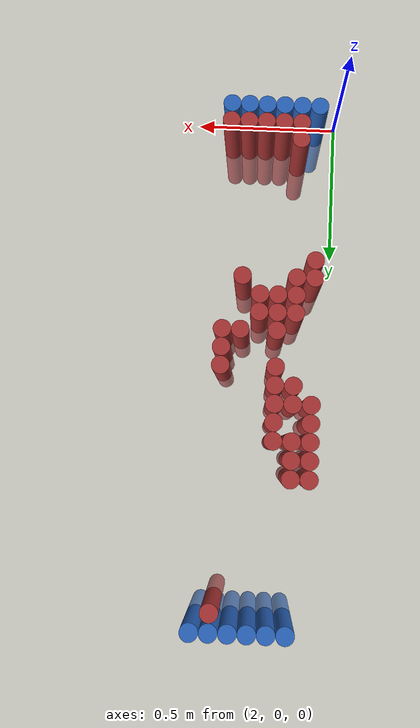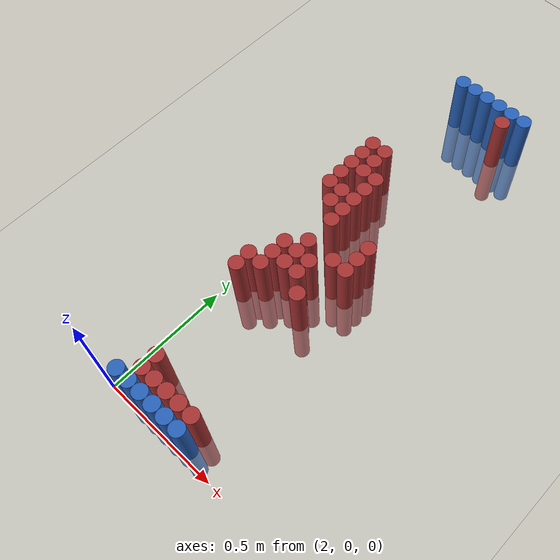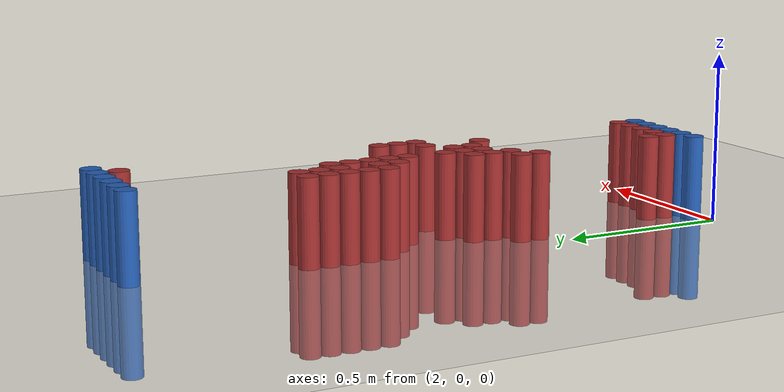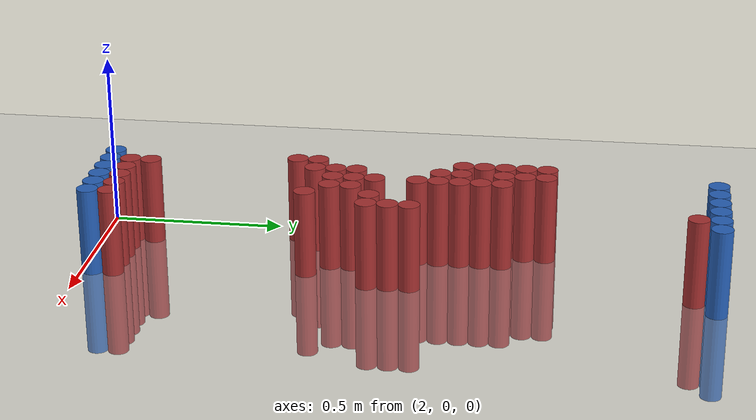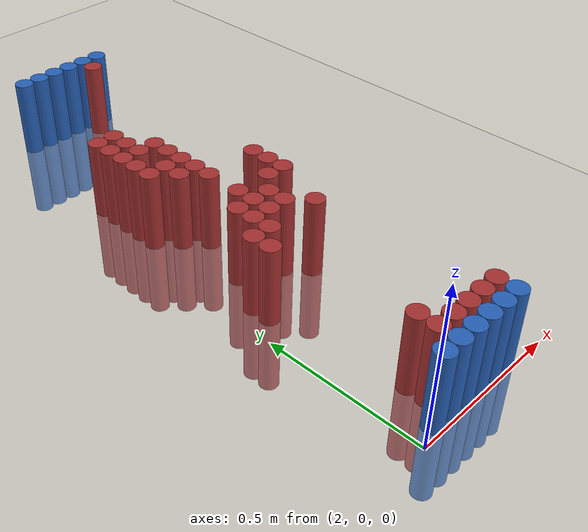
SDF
<sdf version="1.6">
 <world name="default">
  <model name="ground_plane">
   <static>1</static>
   <link name="link">
    <collision name="collision">
     <geometry><plane><normal>0 0 1</normal><size>100 100</size></plane></geometry>
     <surface><friction><ode><mu>100</mu><mu2>50</mu2></ode></friction></surface>
    </collision>
    <visual name="visual">
     <cast_shadows>0</cast_shadows>
     <geometry><plane><normal>0 0 1</normal><size>100 100</size></plane></geometry>
     <material>
      <script><uri>file://media/materials/scripts/gazebo.material</uri><name>Gazebo/Grey</name></script>
     </material>
    </visual>
   </link>
  </model>
  <model name="unit_cylinder_96">
   <static>1</static>
   <pose>2.130000 1.770000 0.000000 0.000000 0.000000 0.000000</pose>
   <link name="link">
    <inertial>
     <mass>1</mass>
     <inertia><ixx>0.145833</ixx><ixy>0</ixy><ixz>0</ixz><iyy>0.145833</iyy><iyz>0</iyz><izz>0.125</izz></inertia>
    </inertial>
    <collision name="collision">
     <geometry><cylinder><radius>0.030000</radius><length>0.5</length></cylinder></geometry>
    </collision>
    <visual name="visual">
     <geometry><cylinder><radius>0.030000</radius><length>0.5</length></cylinder></geometry>
     <material>
      <ambient>0.152000 0.379000 0.720000 1</ambient>
      <diffuse>0.152000 0.379000 0.720000 1</diffuse>
     </material>
     <material>
      <script><name>Gazebo/Grey</name><uri>file://media/materials/scripts/gazebo.material</uri></script>
     </material>
    </visual>
   </link>
  </model>
  <model name="unit_cylinder_97">
   <static>1</static>
   <pose>2.190000 1.770000 0.000000 0.000000 0.000000 0.000000</pose>
   <link name="link">
    <inertial>
     <mass>1</mass>
     <inertia><ixx>0.145833</ixx><ixy>0</ixy><ixz>0</ixz><iyy>0.145833</iyy><iyz>0</iyz><izz>0.125</izz></inertia>
    </inertial>
    <collision name="collision">
     <geometry><cylinder><radius>0.030000</radius><length>0.5</length></cylinder></geometry>
    </collision>
    <visual name="visual">
     <geometry><cylinder><radius>0.030000</radius><length>0.5</length></cylinder></geometry>
     <material>
      <ambient>0.152000 0.379000 0.720000 1</ambient>
      <diffuse>0.152000 0.379000 0.720000 1</diffuse>
     </material>
     <material>
      <script><name>Gazebo/Grey</name><uri>file://media/materials/scripts/gazebo.material</uri></script>
     </material>
    </visual>
   </link>
  </model>
  <model name="unit_cylinder_98">
   <static>1</static>
   <pose>2.250000 1.770000 0.000000 0.000000 0.000000 0.000000</pose>
   <link name="link">
    <inertial>
     <mass>1</mass>
     <inertia><ixx>0.145833</ixx><ixy>0</ixy><ixz>0</ixz><iyy>0.145833</iyy><iyz>0</iyz><izz>0.125</izz></inertia>
    </inertial>
    <collision name="collision">
     <geometry><cylinder><radius>0.030000</radius><length>0.5</length></cylinder></geometry>
    </collision>
    <visual name="visual">
     <geometry><cylinder><radius>0.030000</radius><length>0.5</length></cylinder></geometry>
     <material>
      <ambient>0.152000 0.379000 0.720000 1</ambient>
      <diffuse>0.152000 0.379000 0.720000 1</diffuse>
     </material>
     <material>
      <script><name>Gazebo/Grey</name><uri>file://media/materials/scripts/gazebo.material</uri></script>
     </material>
    </visual>
   </link>
  </model>
  <model name="unit_cylinder_99">
   <static>1</static>
   <pose>2.310000 1.770000 0.000000 0.000000 0.000000 0.000000</pose>
   <link name="link">
    <inertial>
     <mass>1</mass>
     <inertia><ixx>0.145833</ixx><ixy>0</ixy><ixz>0</ixz><iyy>0.145833</iyy><iyz>0</iyz><izz>0.125</izz></inertia>
    </inertial>
    <collision name="collision">
     <geometry><cylinder><radius>0.030000</radius><length>0.5</length></cylinder></geometry>
    </collision>
    <visual name="visual">
     <geometry><cylinder><radius>0.030000</radius><length>0.5</length></cylinder></geometry>
     <material>
      <ambient>0.152000 0.379000 0.720000 1</ambient>
      <diffuse>0.152000 0.379000 0.720000 1</diffuse>
     </material>
     <material>
      <script><name>Gazebo/Grey</name><uri>file://media/materials/scripts/gazebo.material</uri></script>
     </material>
    </visual>
   </link>
  </model>
  <model name="unit_cylinder_100">
   <static>1</static>
   <pose>2.370000 1.770000 0.000000 0.000000 0.000000 0.000000</pose>
   <link name="link">
    <inertial>
     <mass>1</mass>
     <inertia><ixx>0.145833</ixx><ixy>0</ixy><ixz>0</ixz><iyy>0.145833</iyy><iyz>0</iyz><izz>0.125</izz></inertia>
    </inertial>
    <collision name="collision">
     <geometry><cylinder><radius>0.030000</radius><length>0.5</length></cylinder></geometry>
    </collision>
    <visual name="visual">
     <geometry><cylinder><radius>0.030000</radius><length>0.5</length></cylinder></geometry>
     <material>
      <ambient>0.152000 0.379000 0.720000 1</ambient>
      <diffuse>0.152000 0.379000 0.720000 1</diffuse>
     </material>
     <material>
      <script><name>Gazebo/Grey</name><uri>file://media/materials/scripts/gazebo.material</uri></script>
     </material>
    </visual>
   </link>
  </model>
  <model name="unit_cylinder_101">
   <static>1</static>
   <pose>2.430000 1.770000 0.000000 0.000000 0.000000 0.000000</pose>
   <link name="link">
    <inertial>
     <mass>1</mass>
     <inertia><ixx>0.145833</ixx><ixy>0</ixy><ixz>0</ixz><iyy>0.145833</iyy><iyz>0</iyz><izz>0.125</izz></inertia>
    </inertial>
    <collision name="collision">
     <geometry><cylinder><radius>0.030000</radius><length>0.5</length></cylinder></geometry>
    </collision>
    <visual name="visual">
     <geometry><cylinder><radius>0.030000</radius><length>0.5</length></cylinder></geometry>
     <material>
      <ambient>0.152000 0.379000 0.720000 1</ambient>
      <diffuse>0.152000 0.379000 0.720000 1</diffuse>
     </material>
     <material>
      <script><name>Gazebo/Grey</name><uri>file://media/materials/scripts/gazebo.material</uri></script>
     </material>
    </visual>
   </link>
  </model>
  <model name="unit_cylinder_125">
   <static>1</static>
   <pose>2.370000 1.710000 0.000000 0.000000 0.000000 0.000000</pose>
   <link name="link">
    <inertial>
     <mass>1</mass>
     <inertia><ixx>0.145833</ixx><ixy>0</ixy><ixz>0</ixz><iyy>0.145833</iyy><iyz>0</iyz><izz>0.125</izz></inertia>
    </inertial>
    <collision name="collision">
     <geometry><cylinder><radius>0.030000</radius><length>0.5</length></cylinder></geometry>
    </collision>
    <visual name="visual">
     <geometry><cylinder><radius>0.030000</radius><length>0.5</length></cylinder></geometry>
     <material>
      <ambient>0.648000 0.192000 0.192000 1</ambient>
      <diffuse>0.648000 0.192000 0.192000 1</diffuse>
     </material>
     <material>
      <script><name>Gazebo/Grey</name><uri>file://media/materials/scripts/gazebo.material</uri></script>
     </material>
    </visual>
   </link>
  </model>
  <model name="unit_cylinder_163">
   <static>1</static>
   <pose>2.070000 1.290000 0.000000 0.000000 0.000000 0.000000</pose>
   <link name="link">
    <inertial>
     <mass>1</mass>
     <inertia><ixx>0.145833</ixx><ixy>0</ixy><ixz>0</ixz><iyy>0.145833</iyy><iyz>0</iyz><izz>0.125</izz></inertia>
    </inertial>
    <collision name="collision">
     <geometry><cylinder><radius>0.030000</radius><length>0.5</length></cylinder></geometry>
    </collision>
    <visual name="visual">
     <geometry><cylinder><radius>0.030000</radius><length>0.5</length></cylinder></geometry>
     <material>
      <ambient>0.648000 0.192000 0.192000 1</ambient>
      <diffuse>0.648000 0.192000 0.192000 1</diffuse>
     </material>
     <material>
      <script><name>Gazebo/Grey</name><uri>file://media/materials/scripts/gazebo.material</uri></script>
     </material>
    </visual>
   </link>
  </model>
  <model name="unit_cylinder_164">
   <static>1</static>
   <pose>2.130000 1.290000 0.000000 0.000000 0.000000 0.000000</pose>
   <link name="link">
    <inertial>
     <mass>1</mass>
     <inertia><ixx>0.145833</ixx><ixy>0</ixy><ixz>0</ixz><iyy>0.145833</iyy><iyz>0</iyz><izz>0.125</izz></inertia>
    </inertial>
    <collision name="collision">
     <geometry><cylinder><radius>0.030000</radius><length>0.5</length></cylinder></geometry>
    </collision>
    <visual name="visual">
     <geometry><cylinder><radius>0.030000</radius><length>0.5</length></cylinder></geometry>
     <material>
      <ambient>0.648000 0.192000 0.192000 1</ambient>
      <diffuse>0.648000 0.192000 0.192000 1</diffuse>
     </material>
     <material>
      <script><name>Gazebo/Grey</name><uri>file://media/materials/scripts/gazebo.material</uri></script>
     </material>
    </visual>
   </link>
  </model>
  <model name="unit_cylinder_166">
   <static>1</static>
   <pose>2.070000 1.230000 0.000000 0.000000 0.000000 0.000000</pose>
   <link name="link">
    <inertial>
     <mass>1</mass>
     <inertia><ixx>0.145833</ixx><ixy>0</ixy><ixz>0</ixz><iyy>0.145833</iyy><iyz>0</iyz><izz>0.125</izz></inertia>
    </inertial>
    <collision name="collision">
     <geometry><cylinder><radius>0.030000</radius><length>0.5</length></cylinder></geometry>
    </collision>
    <visual name="visual">
     <geometry><cylinder><radius>0.030000</radius><length>0.5</length></cylinder></geometry>
     <material>
      <ambient>0.648000 0.192000 0.192000 1</ambient>
      <diffuse>0.648000 0.192000 0.192000 1</diffuse>
     </material>
     <material>
      <script><name>Gazebo/Grey</name><uri>file://media/materials/scripts/gazebo.material</uri></script>
     </material>
    </visual>
   </link>
  </model>
  <model name="unit_cylinder_167">
   <static>1</static>
   <pose>2.130000 1.230000 0.000000 0.000000 0.000000 0.000000</pose>
   <link name="link">
    <inertial>
     <mass>1</mass>
     <inertia><ixx>0.145833</ixx><ixy>0</ixy><ixz>0</ixz><iyy>0.145833</iyy><iyz>0</iyz><izz>0.125</izz></inertia>
    </inertial>
    <collision name="collision">
     <geometry><cylinder><radius>0.030000</radius><length>0.5</length></cylinder></geometry>
    </collision>
    <visual name="visual">
     <geometry><cylinder><radius>0.030000</radius><length>0.5</length></cylinder></geometry>
     <material>
      <ambient>0.648000 0.192000 0.192000 1</ambient>
      <diffuse>0.648000 0.192000 0.192000 1</diffuse>
     </material>
     <material>
      <script><name>Gazebo/Grey</name><uri>file://media/materials/scripts/gazebo.material</uri></script>
     </material>
    </visual>
   </link>
  </model>
  <model name="unit_cylinder_168">
   <static>1</static>
   <pose>2.070000 1.170000 0.000000 0.000000 0.000000 0.000000</pose>
   <link name="link">
    <inertial>
     <mass>1</mass>
     <inertia><ixx>0.145833</ixx><ixy>0</ixy><ixz>0</ixz><iyy>0.145833</iyy><iyz>0</iyz><izz>0.125</izz></inertia>
    </inertial>
    <collision name="collision">
     <geometry><cylinder><radius>0.030000</radius><length>0.5</length></cylinder></geometry>
    </collision>
    <visual name="visual">
     <geometry><cylinder><radius>0.030000</radius><length>0.5</length></cylinder></geometry>
     <material>
      <ambient>0.648000 0.192000 0.192000 1</ambient>
      <diffuse>0.648000 0.192000 0.192000 1</diffuse>
     </material>
     <material>
      <script><name>Gazebo/Grey</name><uri>file://media/materials/scripts/gazebo.material</uri></script>
     </material>
    </visual>
   </link>
  </model>
  <model name="unit_cylinder_169">
   <static>1</static>
   <pose>2.130000 1.170000 0.000000 0.000000 0.000000 0.000000</pose>
   <link name="link">
    <inertial>
     <mass>1</mass>
     <inertia><ixx>0.145833</ixx><ixy>0</ixy><ixz>0</ixz><iyy>0.145833</iyy><iyz>0</iyz><izz>0.125</izz></inertia>
    </inertial>
    <collision name="collision">
     <geometry><cylinder><radius>0.030000</radius><length>0.5</length></cylinder></geometry>
    </collision>
    <visual name="visual">
     <geometry><cylinder><radius>0.030000</radius><length>0.5</length></cylinder></geometry>
     <material>
      <ambient>0.648000 0.192000 0.192000 1</ambient>
      <diffuse>0.648000 0.192000 0.192000 1</diffuse>
     </material>
     <material>
      <script><name>Gazebo/Grey</name><uri>file://media/materials/scripts/gazebo.material</uri></script>
     </material>
    </visual>
   </link>
  </model>
  <model name="unit_cylinder_170">
   <static>1</static>
   <pose>2.190000 1.170000 0.000000 0.000000 0.000000 0.000000</pose>
   <link name="link">
    <inertial>
     <mass>1</mass>
     <inertia><ixx>0.145833</ixx><ixy>0</ixy><ixz>0</ixz><iyy>0.145833</iyy><iyz>0</iyz><izz>0.125</izz></inertia>
    </inertial>
    <collision name="collision">
     <geometry><cylinder><radius>0.030000</radius><length>0.5</length></cylinder></geometry>
    </collision>
    <visual name="visual">
     <geometry><cylinder><radius>0.030000</radius><length>0.5</length></cylinder></geometry>
     <material>
      <ambient>0.648000 0.192000 0.192000 1</ambient>
      <diffuse>0.648000 0.192000 0.192000 1</diffuse>
     </material>
     <material>
      <script><name>Gazebo/Grey</name><uri>file://media/materials/scripts/gazebo.material</uri></script>
     </material>
    </visual>
   </link>
  </model>
  <model name="unit_cylinder_174">
   <static>1</static>
   <pose>2.070000 1.110000 0.000000 0.000000 0.000000 0.000000</pose>
   <link name="link">
    <inertial>
     <mass>1</mass>
     <inertia><ixx>0.145833</ixx><ixy>0</ixy><ixz>0</ixz><iyy>0.145833</iyy><iyz>0</iyz><izz>0.125</izz></inertia>
    </inertial>
    <collision name="collision">
     <geometry><cylinder><radius>0.030000</radius><length>0.5</length></cylinder></geometry>
    </collision>
    <visual name="visual">
     <geometry><cylinder><radius>0.030000</radius><length>0.5</length></cylinder></geometry>
     <material>
      <ambient>0.648000 0.192000 0.192000 1</ambient>
      <diffuse>0.648000 0.192000 0.192000 1</diffuse>
     </material>
     <material>
      <script><name>Gazebo/Grey</name><uri>file://media/materials/scripts/gazebo.material</uri></script>
     </material>
    </visual>
   </link>
  </model>
  <model name="unit_cylinder_175">
   <static>1</static>
   <pose>2.190000 1.110000 0.000000 0.000000 0.000000 0.000000</pose>
   <link name="link">
    <inertial>
     <mass>1</mass>
     <inertia><ixx>0.145833</ixx><ixy>0</ixy><ixz>0</ixz><iyy>0.145833</iyy><iyz>0</iyz><izz>0.125</izz></inertia>
    </inertial>
    <collision name="collision">
     <geometry><cylinder><radius>0.030000</radius><length>0.5</length></cylinder></geometry>
    </collision>
    <visual name="visual">
     <geometry><cylinder><radius>0.030000</radius><length>0.5</length></cylinder></geometry>
     <material>
      <ambient>0.648000 0.192000 0.192000 1</ambient>
      <diffuse>0.648000 0.192000 0.192000 1</diffuse>
     </material>
     <material>
      <script><name>Gazebo/Grey</name><uri>file://media/materials/scripts/gazebo.material</uri></script>
     </material>
    </visual>
   </link>
  </model>
  <model name="unit_cylinder_182">
   <static>1</static>
   <pose>2.070000 1.050000 0.000000 0.000000 0.000000 0.000000</pose>
   <link name="link">
    <inertial>
     <mass>1</mass>
     <inertia><ixx>0.145833</ixx><ixy>0</ixy><ixz>0</ixz><iyy>0.145833</iyy><iyz>0</iyz><izz>0.125</izz></inertia>
    </inertial>
    <collision name="collision">
     <geometry><cylinder><radius>0.030000</radius><length>0.5</length></cylinder></geometry>
    </collision>
    <visual name="visual">
     <geometry><cylinder><radius>0.030000</radius><length>0.5</length></cylinder></geometry>
     <material>
      <ambient>0.648000 0.192000 0.192000 1</ambient>
      <diffuse>0.648000 0.192000 0.192000 1</diffuse>
     </material>
     <material>
      <script><name>Gazebo/Grey</name><uri>file://media/materials/scripts/gazebo.material</uri></script>
     </material>
    </visual>
   </link>
  </model>
  <model name="unit_cylinder_183">
   <static>1</static>
   <pose>2.130000 1.050000 0.000000 0.000000 0.000000 0.000000</pose>
   <link name="link">
    <inertial>
     <mass>1</mass>
     <inertia><ixx>0.145833</ixx><ixy>0</ixy><ixz>0</ixz><iyy>0.145833</iyy><iyz>0</iyz><izz>0.125</izz></inertia>
    </inertial>
    <collision name="collision">
     <geometry><cylinder><radius>0.030000</radius><length>0.5</length></cylinder></geometry>
    </collision>
    <visual name="visual">
     <geometry><cylinder><radius>0.030000</radius><length>0.5</length></cylinder></geometry>
     <material>
      <ambient>0.648000 0.192000 0.192000 1</ambient>
      <diffuse>0.648000 0.192000 0.192000 1</diffuse>
     </material>
     <material>
      <script><name>Gazebo/Grey</name><uri>file://media/materials/scripts/gazebo.material</uri></script>
     </material>
    </visual>
   </link>
  </model>
  <model name="unit_cylinder_184">
   <static>1</static>
   <pose>2.190000 1.050000 0.000000 0.000000 0.000000 0.000000</pose>
   <link name="link">
    <inertial>
     <mass>1</mass>
     <inertia><ixx>0.145833</ixx><ixy>0</ixy><ixz>0</ixz><iyy>0.145833</iyy><iyz>0</iyz><izz>0.125</izz></inertia>
    </inertial>
    <collision name="collision">
     <geometry><cylinder><radius>0.030000</radius><length>0.5</length></cylinder></geometry>
    </collision>
    <visual name="visual">
     <geometry><cylinder><radius>0.030000</radius><length>0.5</length></cylinder></geometry>
     <material>
      <ambient>0.648000 0.192000 0.192000 1</ambient>
      <diffuse>0.648000 0.192000 0.192000 1</diffuse>
     </material>
     <material>
      <script><name>Gazebo/Grey</name><uri>file://media/materials/scripts/gazebo.material</uri></script>
     </material>
    </visual>
   </link>
  </model>
  <model name="unit_cylinder_190">
   <static>1</static>
   <pose>2.130000 0.990000 0.000000 0.000000 0.000000 0.000000</pose>
   <link name="link">
    <inertial>
     <mass>1</mass>
     <inertia><ixx>0.145833</ixx><ixy>0</ixy><ixz>0</ixz><iyy>0.145833</iyy><iyz>0</iyz><izz>0.125</izz></inertia>
    </inertial>
    <collision name="collision">
     <geometry><cylinder><radius>0.030000</radius><length>0.5</length></cylinder></geometry>
    </collision>
    <visual name="visual">
     <geometry><cylinder><radius>0.030000</radius><length>0.5</length></cylinder></geometry>
     <material>
      <ambient>0.648000 0.192000 0.192000 1</ambient>
      <diffuse>0.648000 0.192000 0.192000 1</diffuse>
     </material>
     <material>
      <script><name>Gazebo/Grey</name><uri>file://media/materials/scripts/gazebo.material</uri></script>
     </material>
    </visual>
   </link>
  </model>
  <model name="unit_cylinder_191">
   <static>1</static>
   <pose>2.190000 0.990000 0.000000 0.000000 0.000000 0.000000</pose>
   <link name="link">
    <inertial>
     <mass>1</mass>
     <inertia><ixx>0.145833</ixx><ixy>0</ixy><ixz>0</ixz><iyy>0.145833</iyy><iyz>0</iyz><izz>0.125</izz></inertia>
    </inertial>
    <collision name="collision">
     <geometry><cylinder><radius>0.030000</radius><length>0.5</length></cylinder></geometry>
    </collision>
    <visual name="visual">
     <geometry><cylinder><radius>0.030000</radius><length>0.5</length></cylinder></geometry>
     <material>
      <ambient>0.648000 0.192000 0.192000 1</ambient>
      <diffuse>0.648000 0.192000 0.192000 1</diffuse>
     </material>
     <material>
      <script><name>Gazebo/Grey</name><uri>file://media/materials/scripts/gazebo.material</uri></script>
     </material>
    </visual>
   </link>
  </model>
  <model name="unit_cylinder_195">
   <static>1</static>
   <pose>2.190000 0.930000 0.000000 0.000000 0.000000 0.000000</pose>
   <link name="link">
    <inertial>
     <mass>1</mass>
     <inertia><ixx>0.145833</ixx><ixy>0</ixy><ixz>0</ixz><iyy>0.145833</iyy><iyz>0</iyz><izz>0.125</izz></inertia>
    </inertial>
    <collision name="collision">
     <geometry><cylinder><radius>0.030000</radius><length>0.5</length></cylinder></geometry>
    </collision>
    <visual name="visual">
     <geometry><cylinder><radius>0.030000</radius><length>0.5</length></cylinder></geometry>
     <material>
      <ambient>0.648000 0.192000 0.192000 1</ambient>
      <diffuse>0.648000 0.192000 0.192000 1</diffuse>
     </material>
     <material>
      <script><name>Gazebo/Grey</name><uri>file://media/materials/scripts/gazebo.material</uri></script>
     </material>
    </visual>
   </link>
  </model>
  <model name="unit_cylinder_196">
   <static>1</static>
   <pose>2.370000 0.930000 0.000000 0.000000 0.000000 0.000000</pose>
   <link name="link">
    <inertial>
     <mass>1</mass>
     <inertia><ixx>0.145833</ixx><ixy>0</ixy><ixz>0</ixz><iyy>0.145833</iyy><iyz>0</iyz><izz>0.125</izz></inertia>
    </inertial>
    <collision name="collision">
     <geometry><cylinder><radius>0.030000</radius><length>0.5</length></cylinder></geometry>
    </collision>
    <visual name="visual">
     <geometry><cylinder><radius>0.030000</radius><length>0.5</length></cylinder></geometry>
     <material>
      <ambient>0.648000 0.192000 0.192000 1</ambient>
      <diffuse>0.648000 0.192000 0.192000 1</diffuse>
     </material>
     <material>
      <script><name>Gazebo/Grey</name><uri>file://media/materials/scripts/gazebo.material</uri></script>
     </material>
    </visual>
   </link>
  </model>
  <model name="unit_cylinder_197">
   <static>1</static>
   <pose>2.370000 0.870000 0.000000 0.000000 0.000000 0.000000</pose>
   <link name="link">
    <inertial>
     <mass>1</mass>
     <inertia><ixx>0.145833</ixx><ixy>0</ixy><ixz>0</ixz><iyy>0.145833</iyy><iyz>0</iyz><izz>0.125</izz></inertia>
    </inertial>
    <collision name="collision">
     <geometry><cylinder><radius>0.030000</radius><length>0.5</length></cylinder></geometry>
    </collision>
    <visual name="visual">
     <geometry><cylinder><radius>0.030000</radius><length>0.5</length></cylinder></geometry>
     <material>
      <ambient>0.648000 0.192000 0.192000 1</ambient>
      <diffuse>0.648000 0.192000 0.192000 1</diffuse>
     </material>
     <material>
      <script><name>Gazebo/Grey</name><uri>file://media/materials/scripts/gazebo.material</uri></script>
     </material>
    </visual>
   </link>
  </model>
  <model name="unit_cylinder_198">
   <static>1</static>
   <pose>2.190000 0.810000 0.000000 0.000000 0.000000 0.000000</pose>
   <link name="link">
    <inertial>
     <mass>1</mass>
     <inertia><ixx>0.145833</ixx><ixy>0</ixy><ixz>0</ixz><iyy>0.145833</iyy><iyz>0</iyz><izz>0.125</izz></inertia>
    </inertial>
    <collision name="collision">
     <geometry><cylinder><radius>0.030000</radius><length>0.5</length></cylinder></geometry>
    </collision>
    <visual name="visual">
     <geometry><cylinder><radius>0.030000</radius><length>0.5</length></cylinder></geometry>
     <material>
      <ambient>0.648000 0.192000 0.192000 1</ambient>
      <diffuse>0.648000 0.192000 0.192000 1</diffuse>
     </material>
     <material>
      <script><name>Gazebo/Grey</name><uri>file://media/materials/scripts/gazebo.material</uri></script>
     </material>
    </visual>
   </link>
  </model>
  <model name="unit_cylinder_199">
   <static>1</static>
   <pose>2.310000 0.810000 0.000000 0.000000 0.000000 0.000000</pose>
   <link name="link">
    <inertial>
     <mass>1</mass>
     <inertia><ixx>0.145833</ixx><ixy>0</ixy><ixz>0</ixz><iyy>0.145833</iyy><iyz>0</iyz><izz>0.125</izz></inertia>
    </inertial>
    <collision name="collision">
     <geometry><cylinder><radius>0.030000</radius><length>0.5</length></cylinder></geometry>
    </collision>
    <visual name="visual">
     <geometry><cylinder><radius>0.030000</radius><length>0.5</length></cylinder></geometry>
     <material>
      <ambient>0.648000 0.192000 0.192000 1</ambient>
      <diffuse>0.648000 0.192000 0.192000 1</diffuse>
     </material>
     <material>
      <script><name>Gazebo/Grey</name><uri>file://media/materials/scripts/gazebo.material</uri></script>
     </material>
    </visual>
   </link>
  </model>
  <model name="unit_cylinder_200">
   <static>1</static>
   <pose>2.370000 0.810000 0.000000 0.000000 0.000000 0.000000</pose>
   <link name="link">
    <inertial>
     <mass>1</mass>
     <inertia><ixx>0.145833</ixx><ixy>0</ixy><ixz>0</ixz><iyy>0.145833</iyy><iyz>0</iyz><izz>0.125</izz></inertia>
    </inertial>
    <collision name="collision">
     <geometry><cylinder><radius>0.030000</radius><length>0.5</length></cylinder></geometry>
    </collision>
    <visual name="visual">
     <geometry><cylinder><radius>0.030000</radius><length>0.5</length></cylinder></geometry>
     <material>
      <ambient>0.648000 0.192000 0.192000 1</ambient>
      <diffuse>0.648000 0.192000 0.192000 1</diffuse>
     </material>
     <material>
      <script><name>Gazebo/Grey</name><uri>file://media/materials/scripts/gazebo.material</uri></script>
     </material>
    </visual>
   </link>
  </model>
  <model name="unit_cylinder_201">
   <static>1</static>
   <pose>2.130000 0.750000 0.000000 0.000000 0.000000 0.000000</pose>
   <link name="link">
    <inertial>
     <mass>1</mass>
     <inertia><ixx>0.145833</ixx><ixy>0</ixy><ixz>0</ixz><iyy>0.145833</iyy><iyz>0</iyz><izz>0.125</izz></inertia>
    </inertial>
    <collision name="collision">
     <geometry><cylinder><radius>0.030000</radius><length>0.5</length></cylinder></geometry>
    </collision>
    <visual name="visual">
     <geometry><cylinder><radius>0.030000</radius><length>0.5</length></cylinder></geometry>
     <material>
      <ambient>0.648000 0.192000 0.192000 1</ambient>
      <diffuse>0.648000 0.192000 0.192000 1</diffuse>
     </material>
     <material>
      <script><name>Gazebo/Grey</name><uri>file://media/materials/scripts/gazebo.material</uri></script>
     </material>
    </visual>
   </link>
  </model>
  <model name="unit_cylinder_202">
   <static>1</static>
   <pose>2.190000 0.750000 0.000000 0.000000 0.000000 0.000000</pose>
   <link name="link">
    <inertial>
     <mass>1</mass>
     <inertia><ixx>0.145833</ixx><ixy>0</ixy><ixz>0</ixz><iyy>0.145833</iyy><iyz>0</iyz><izz>0.125</izz></inertia>
    </inertial>
    <collision name="collision">
     <geometry><cylinder><radius>0.030000</radius><length>0.5</length></cylinder></geometry>
    </collision>
    <visual name="visual">
     <geometry><cylinder><radius>0.030000</radius><length>0.5</length></cylinder></geometry>
     <material>
      <ambient>0.648000 0.192000 0.192000 1</ambient>
      <diffuse>0.648000 0.192000 0.192000 1</diffuse>
     </material>
     <material>
      <script><name>Gazebo/Grey</name><uri>file://media/materials/scripts/gazebo.material</uri></script>
     </material>
    </visual>
   </link>
  </model>
  <model name="unit_cylinder_203">
   <static>1</static>
   <pose>2.250000 0.750000 0.000000 0.000000 0.000000 0.000000</pose>
   <link name="link">
    <inertial>
     <mass>1</mass>
     <inertia><ixx>0.145833</ixx><ixy>0</ixy><ixz>0</ixz><iyy>0.145833</iyy><iyz>0</iyz><izz>0.125</izz></inertia>
    </inertial>
    <collision name="collision">
     <geometry><cylinder><radius>0.030000</radius><length>0.5</length></cylinder></geometry>
    </collision>
    <visual name="visual">
     <geometry><cylinder><radius>0.030000</radius><length>0.5</length></cylinder></geometry>
     <material>
      <ambient>0.648000 0.192000 0.192000 1</ambient>
      <diffuse>0.648000 0.192000 0.192000 1</diffuse>
     </material>
     <material>
      <script><name>Gazebo/Grey</name><uri>file://media/materials/scripts/gazebo.material</uri></script>
     </material>
    </visual>
   </link>
  </model>
  <model name="unit_cylinder_204">
   <static>1</static>
   <pose>2.130000 0.690000 0.000000 0.000000 0.000000 0.000000</pose>
   <link name="link">
    <inertial>
     <mass>1</mass>
     <inertia><ixx>0.145833</ixx><ixy>0</ixy><ixz>0</ixz><iyy>0.145833</iyy><iyz>0</iyz><izz>0.125</izz></inertia>
    </inertial>
    <collision name="collision">
     <geometry><cylinder><radius>0.030000</radius><length>0.5</length></cylinder></geometry>
    </collision>
    <visual name="visual">
     <geometry><cylinder><radius>0.030000</radius><length>0.5</length></cylinder></geometry>
     <material>
      <ambient>0.648000 0.192000 0.192000 1</ambient>
      <diffuse>0.648000 0.192000 0.192000 1</diffuse>
     </material>
     <material>
      <script><name>Gazebo/Grey</name><uri>file://media/materials/scripts/gazebo.material</uri></script>
     </material>
    </visual>
   </link>
  </model>
  <model name="unit_cylinder_205">
   <static>1</static>
   <pose>2.190000 0.690000 0.000000 0.000000 0.000000 0.000000</pose>
   <link name="link">
    <inertial>
     <mass>1</mass>
     <inertia><ixx>0.145833</ixx><ixy>0</ixy><ixz>0</ixz><iyy>0.145833</iyy><iyz>0</iyz><izz>0.125</izz></inertia>
    </inertial>
    <collision name="collision">
     <geometry><cylinder><radius>0.030000</radius><length>0.5</length></cylinder></geometry>
    </collision>
    <visual name="visual">
     <geometry><cylinder><radius>0.030000</radius><length>0.5</length></cylinder></geometry>
     <material>
      <ambient>0.648000 0.192000 0.192000 1</ambient>
      <diffuse>0.648000 0.192000 0.192000 1</diffuse>
     </material>
     <material>
      <script><name>Gazebo/Grey</name><uri>file://media/materials/scripts/gazebo.material</uri></script>
     </material>
    </visual>
   </link>
  </model>
  <model name="unit_cylinder_206">
   <static>1</static>
   <pose>2.250000 0.690000 0.000000 0.000000 0.000000 0.000000</pose>
   <link name="link">
    <inertial>
     <mass>1</mass>
     <inertia><ixx>0.145833</ixx><ixy>0</ixy><ixz>0</ixz><iyy>0.145833</iyy><iyz>0</iyz><izz>0.125</izz></inertia>
    </inertial>
    <collision name="collision">
     <geometry><cylinder><radius>0.030000</radius><length>0.5</length></cylinder></geometry>
    </collision>
    <visual name="visual">
     <geometry><cylinder><radius>0.030000</radius><length>0.5</length></cylinder></geometry>
     <material>
      <ambient>0.648000 0.192000 0.192000 1</ambient>
      <diffuse>0.648000 0.192000 0.192000 1</diffuse>
     </material>
     <material>
      <script><name>Gazebo/Grey</name><uri>file://media/materials/scripts/gazebo.material</uri></script>
     </material>
    </visual>
   </link>
  </model>
  <model name="unit_cylinder_207">
   <static>1</static>
   <pose>2.070000 0.630000 0.000000 0.000000 0.000000 0.000000</pose>
   <link name="link">
    <inertial>
     <mass>1</mass>
     <inertia><ixx>0.145833</ixx><ixy>0</ixy><ixz>0</ixz><iyy>0.145833</iyy><iyz>0</iyz><izz>0.125</izz></inertia>
    </inertial>
    <collision name="collision">
     <geometry><cylinder><radius>0.030000</radius><length>0.5</length></cylinder></geometry>
    </collision>
    <visual name="visual">
     <geometry><cylinder><radius>0.030000</radius><length>0.5</length></cylinder></geometry>
     <material>
      <ambient>0.648000 0.192000 0.192000 1</ambient>
      <diffuse>0.648000 0.192000 0.192000 1</diffuse>
     </material>
     <material>
      <script><name>Gazebo/Grey</name><uri>file://media/materials/scripts/gazebo.material</uri></script>
     </material>
    </visual>
   </link>
  </model>
  <model name="unit_cylinder_208">
   <static>1</static>
   <pose>2.130000 0.630000 0.000000 0.000000 0.000000 0.000000</pose>
   <link name="link">
    <inertial>
     <mass>1</mass>
     <inertia><ixx>0.145833</ixx><ixy>0</ixy><ixz>0</ixz><iyy>0.145833</iyy><iyz>0</iyz><izz>0.125</izz></inertia>
    </inertial>
    <collision name="collision">
     <geometry><cylinder><radius>0.030000</radius><length>0.5</length></cylinder></geometry>
    </collision>
    <visual name="visual">
     <geometry><cylinder><radius>0.030000</radius><length>0.5</length></cylinder></geometry>
     <material>
      <ambient>0.648000 0.192000 0.192000 1</ambient>
      <diffuse>0.648000 0.192000 0.192000 1</diffuse>
     </material>
     <material>
      <script><name>Gazebo/Grey</name><uri>file://media/materials/scripts/gazebo.material</uri></script>
     </material>
    </visual>
   </link>
  </model>
  <model name="unit_cylinder_209">
   <static>1</static>
   <pose>2.310000 0.630000 0.000000 0.000000 0.000000 0.000000</pose>
   <link name="link">
    <inertial>
     <mass>1</mass>
     <inertia><ixx>0.145833</ixx><ixy>0</ixy><ixz>0</ixz><iyy>0.145833</iyy><iyz>0</iyz><izz>0.125</izz></inertia>
    </inertial>
    <collision name="collision">
     <geometry><cylinder><radius>0.030000</radius><length>0.5</length></cylinder></geometry>
    </collision>
    <visual name="visual">
     <geometry><cylinder><radius>0.030000</radius><length>0.5</length></cylinder></geometry>
     <material>
      <ambient>0.648000 0.192000 0.192000 1</ambient>
      <diffuse>0.648000 0.192000 0.192000 1</diffuse>
     </material>
     <material>
      <script><name>Gazebo/Grey</name><uri>file://media/materials/scripts/gazebo.material</uri></script>
     </material>
    </visual>
   </link>
  </model>
  <model name="unit_cylinder_212">
   <static>1</static>
   <pose>2.070000 0.570000 0.000000 0.000000 0.000000 0.000000</pose>
   <link name="link">
    <inertial>
     <mass>1</mass>
     <inertia><ixx>0.145833</ixx><ixy>0</ixy><ixz>0</ixz><iyy>0.145833</iyy><iyz>0</iyz><izz>0.125</izz></inertia>
    </inertial>
    <collision name="collision">
     <geometry><cylinder><radius>0.030000</radius><length>0.5</length></cylinder></geometry>
    </collision>
    <visual name="visual">
     <geometry><cylinder><radius>0.030000</radius><length>0.5</length></cylinder></geometry>
     <material>
      <ambient>0.648000 0.192000 0.192000 1</ambient>
      <diffuse>0.648000 0.192000 0.192000 1</diffuse>
     </material>
     <material>
      <script><name>Gazebo/Grey</name><uri>file://media/materials/scripts/gazebo.material</uri></script>
     </material>
    </visual>
   </link>
  </model>
  <model name="unit_cylinder_238">
   <static>1</static>
   <pose>2.130000 0.150000 0.000000 0.000000 0.000000 0.000000</pose>
   <link name="link">
    <inertial>
     <mass>1</mass>
     <inertia><ixx>0.145833</ixx><ixy>0</ixy><ixz>0</ixz><iyy>0.145833</iyy><iyz>0</iyz><izz>0.125</izz></inertia>
    </inertial>
    <collision name="collision">
     <geometry><cylinder><radius>0.030000</radius><length>0.5</length></cylinder></geometry>
    </collision>
    <visual name="visual">
     <geometry><cylinder><radius>0.030000</radius><length>0.5</length></cylinder></geometry>
     <material>
      <ambient>0.648000 0.192000 0.192000 1</ambient>
      <diffuse>0.648000 0.192000 0.192000 1</diffuse>
     </material>
     <material>
      <script><name>Gazebo/Grey</name><uri>file://media/materials/scripts/gazebo.material</uri></script>
     </material>
    </visual>
   </link>
  </model>
  <model name="unit_cylinder_247">
   <static>1</static>
   <pose>2.130000 0.090000 0.000000 0.000000 0.000000 0.000000</pose>
   <link name="link">
    <inertial>
     <mass>1</mass>
     <inertia><ixx>0.145833</ixx><ixy>0</ixy><ixz>0</ixz><iyy>0.145833</iyy><iyz>0</iyz><izz>0.125</izz></inertia>
    </inertial>
    <collision name="collision">
     <geometry><cylinder><radius>0.030000</radius><length>0.5</length></cylinder></geometry>
    </collision>
    <visual name="visual">
     <geometry><cylinder><radius>0.030000</radius><length>0.5</length></cylinder></geometry>
     <material>
      <ambient>0.648000 0.192000 0.192000 1</ambient>
      <diffuse>0.648000 0.192000 0.192000 1</diffuse>
     </material>
     <material>
      <script><name>Gazebo/Grey</name><uri>file://media/materials/scripts/gazebo.material</uri></script>
     </material>
    </visual>
   </link>
  </model>
  <model name="unit_cylinder_248">
   <static>1</static>
   <pose>2.190000 0.090000 0.000000 0.000000 0.000000 0.000000</pose>
   <link name="link">
    <inertial>
     <mass>1</mass>
     <inertia><ixx>0.145833</ixx><ixy>0</ixy><ixz>0</ixz><iyy>0.145833</iyy><iyz>0</iyz><izz>0.125</izz></inertia>
    </inertial>
    <collision name="collision">
     <geometry><cylinder><radius>0.030000</radius><length>0.5</length></cylinder></geometry>
    </collision>
    <visual name="visual">
     <geometry><cylinder><radius>0.030000</radius><length>0.5</length></cylinder></geometry>
     <material>
      <ambient>0.648000 0.192000 0.192000 1</ambient>
      <diffuse>0.648000 0.192000 0.192000 1</diffuse>
     </material>
     <material>
      <script><name>Gazebo/Grey</name><uri>file://media/materials/scripts/gazebo.material</uri></script>
     </material>
    </visual>
   </link>
  </model>
  <model name="unit_cylinder_249">
   <static>1</static>
   <pose>2.250000 0.090000 0.000000 0.000000 0.000000 0.000000</pose>
   <link name="link">
    <inertial>
     <mass>1</mass>
     <inertia><ixx>0.145833</ixx><ixy>0</ixy><ixz>0</ixz><iyy>0.145833</iyy><iyz>0</iyz><izz>0.125</izz></inertia>
    </inertial>
    <collision name="collision">
     <geometry><cylinder><radius>0.030000</radius><length>0.5</length></cylinder></geometry>
    </collision>
    <visual name="visual">
     <geometry><cylinder><radius>0.030000</radius><length>0.5</length></cylinder></geometry>
     <material>
      <ambient>0.648000 0.192000 0.192000 1</ambient>
      <diffuse>0.648000 0.192000 0.192000 1</diffuse>
     </material>
     <material>
      <script><name>Gazebo/Grey</name><uri>file://media/materials/scripts/gazebo.material</uri></script>
     </material>
    </visual>
   </link>
  </model>
  <model name="unit_cylinder_250">
   <static>1</static>
   <pose>2.310000 0.090000 0.000000 0.000000 0.000000 0.000000</pose>
   <link name="link">
    <inertial>
     <mass>1</mass>
     <inertia><ixx>0.145833</ixx><ixy>0</ixy><ixz>0</ixz><iyy>0.145833</iyy><iyz>0</iyz><izz>0.125</izz></inertia>
    </inertial>
    <collision name="collision">
     <geometry><cylinder><radius>0.030000</radius><length>0.5</length></cylinder></geometry>
    </collision>
    <visual name="visual">
     <geometry><cylinder><radius>0.030000</radius><length>0.5</length></cylinder></geometry>
     <material>
      <ambient>0.648000 0.192000 0.192000 1</ambient>
      <diffuse>0.648000 0.192000 0.192000 1</diffuse>
     </material>
     <material>
      <script><name>Gazebo/Grey</name><uri>file://media/materials/scripts/gazebo.material</uri></script>
     </material>
    </visual>
   </link>
  </model>
  <model name="unit_cylinder_251">
   <static>1</static>
   <pose>2.370000 0.090000 0.000000 0.000000 0.000000 0.000000</pose>
   <link name="link">
    <inertial>
     <mass>1</mass>
     <inertia><ixx>0.145833</ixx><ixy>0</ixy><ixz>0</ixz><iyy>0.145833</iyy><iyz>0</iyz><izz>0.125</izz></inertia>
    </inertial>
    <collision name="collision">
     <geometry><cylinder><radius>0.030000</radius><length>0.5</length></cylinder></geometry>
    </collision>
    <visual name="visual">
     <geometry><cylinder><radius>0.030000</radius><length>0.5</length></cylinder></geometry>
     <material>
      <ambient>0.648000 0.192000 0.192000 1</ambient>
      <diffuse>0.648000 0.192000 0.192000 1</diffuse>
     </material>
     <material>
      <script><name>Gazebo/Grey</name><uri>file://media/materials/scripts/gazebo.material</uri></script>
     </material>
    </visual>
   </link>
  </model>
  <model name="unit_cylinder_261">
   <static>1</static>
   <pose>2.070000 0.030000 0.000000 0.000000 0.000000 0.000000</pose>
   <link name="link">
    <inertial>
     <mass>1</mass>
     <inertia><ixx>0.145833</ixx><ixy>0</ixy><ixz>0</ixz><iyy>0.145833</iyy><iyz>0</iyz><izz>0.125</izz></inertia>
    </inertial>
    <collision name="collision">
     <geometry><cylinder><radius>0.030000</radius><length>0.5</length></cylinder></geometry>
    </collision>
    <visual name="visual">
     <geometry><cylinder><radius>0.030000</radius><length>0.5</length></cylinder></geometry>
     <material>
      <ambient>0.152000 0.379000 0.720000 1</ambient>
      <diffuse>0.152000 0.379000 0.720000 1</diffuse>
     </material>
     <material>
      <script><name>Gazebo/Grey</name><uri>file://media/materials/scripts/gazebo.material</uri></script>
     </material>
    </visual>
   </link>
  </model>
  <model name="unit_cylinder_262">
   <static>1</static>
   <pose>2.130000 0.030000 0.000000 0.000000 0.000000 0.000000</pose>
   <link name="link">
    <inertial>
     <mass>1</mass>
     <inertia><ixx>0.145833</ixx><ixy>0</ixy><ixz>0</ixz><iyy>0.145833</iyy><iyz>0</iyz><izz>0.125</izz></inertia>
    </inertial>
    <collision name="collision">
     <geometry><cylinder><radius>0.030000</radius><length>0.5</length></cylinder></geometry>
    </collision>
    <visual name="visual">
     <geometry><cylinder><radius>0.030000</radius><length>0.5</length></cylinder></geometry>
     <material>
      <ambient>0.152000 0.379000 0.720000 1</ambient>
      <diffuse>0.152000 0.379000 0.720000 1</diffuse>
     </material>
     <material>
      <script><name>Gazebo/Grey</name><uri>file://media/materials/scripts/gazebo.material</uri></script>
     </material>
    </visual>
   </link>
  </model>
  <model name="unit_cylinder_263">
   <static>1</static>
   <pose>2.190000 0.030000 0.000000 0.000000 0.000000 0.000000</pose>
   <link name="link">
    <inertial>
     <mass>1</mass>
     <inertia><ixx>0.145833</ixx><ixy>0</ixy><ixz>0</ixz><iyy>0.145833</iyy><iyz>0</iyz><izz>0.125</izz></inertia>
    </inertial>
    <collision name="collision">
     <geometry><cylinder><radius>0.030000</radius><length>0.5</length></cylinder></geometry>
    </collision>
    <visual name="visual">
     <geometry><cylinder><radius>0.030000</radius><length>0.5</length></cylinder></geometry>
     <material>
      <ambient>0.152000 0.379000 0.720000 1</ambient>
      <diffuse>0.152000 0.379000 0.720000 1</diffuse>
     </material>
     <material>
      <script><name>Gazebo/Grey</name><uri>file://media/materials/scripts/gazebo.material</uri></script>
     </material>
    </visual>
   </link>
  </model>
  <model name="unit_cylinder_264">
   <static>1</static>
   <pose>2.250000 0.030000 0.000000 0.000000 0.000000 0.000000</pose>
   <link name="link">
    <inertial>
     <mass>1</mass>
     <inertia><ixx>0.145833</ixx><ixy>0</ixy><ixz>0</ixz><iyy>0.145833</iyy><iyz>0</iyz><izz>0.125</izz></inertia>
    </inertial>
    <collision name="collision">
     <geometry><cylinder><radius>0.030000</radius><length>0.5</length></cylinder></geometry>
    </collision>
    <visual name="visual">
     <geometry><cylinder><radius>0.030000</radius><length>0.5</length></cylinder></geometry>
     <material>
      <ambient>0.152000 0.379000 0.720000 1</ambient>
      <diffuse>0.152000 0.379000 0.720000 1</diffuse>
     </material>
     <material>
      <script><name>Gazebo/Grey</name><uri>file://media/materials/scripts/gazebo.material</uri></script>
     </material>
    </visual>
   </link>
  </model>
  <model name="unit_cylinder_265">
   <static>1</static>
   <pose>2.310000 0.030000 0.000000 0.000000 0.000000 0.000000</pose>
   <link name="link">
    <inertial>
     <mass>1</mass>
     <inertia><ixx>0.145833</ixx><ixy>0</ixy><ixz>0</ixz><iyy>0.145833</iyy><iyz>0</iyz><izz>0.125</izz></inertia>
    </inertial>
    <collision name="collision">
     <geometry><cylinder><radius>0.030000</radius><length>0.5</length></cylinder></geometry>
    </collision>
    <visual name="visual">
     <geometry><cylinder><radius>0.030000</radius><length>0.5</length></cylinder></geometry>
     <material>
      <ambient>0.152000 0.379000 0.720000 1</ambient>
      <diffuse>0.152000 0.379000 0.720000 1</diffuse>
     </material>
     <material>
      <script><name>Gazebo/Grey</name><uri>file://media/materials/scripts/gazebo.material</uri></script>
     </material>
    </visual>
   </link>
  </model>
  <model name="unit_cylinder_266">
   <static>1</static>
   <pose>2.370000 0.030000 0.000000 0.000000 0.000000 0.000000</pose>
   <link name="link">
    <inertial>
     <mass>1</mass>
     <inertia><ixx>0.145833</ixx><ixy>0</ixy><ixz>0</ixz><iyy>0.145833</iyy><iyz>0</iyz><izz>0.125</izz></inertia>
    </inertial>
    <collision name="collision">
     <geometry><cylinder><radius>0.030000</radius><length>0.5</length></cylinder></geometry>
    </collision>
    <visual name="visual">
     <geometry><cylinder><radius>0.030000</radius><length>0.5</length></cylinder></geometry>
     <material>
      <ambient>0.152000 0.379000 0.720000 1</ambient>
      <diffuse>0.152000 0.379000 0.720000 1</diffuse>
     </material>
     <material>
      <script><name>Gazebo/Grey</name><uri>file://media/materials/scripts/gazebo.material</uri></script>
     </material>
    </visual>
   </link>
  </model>
 </world>
</sdf>
